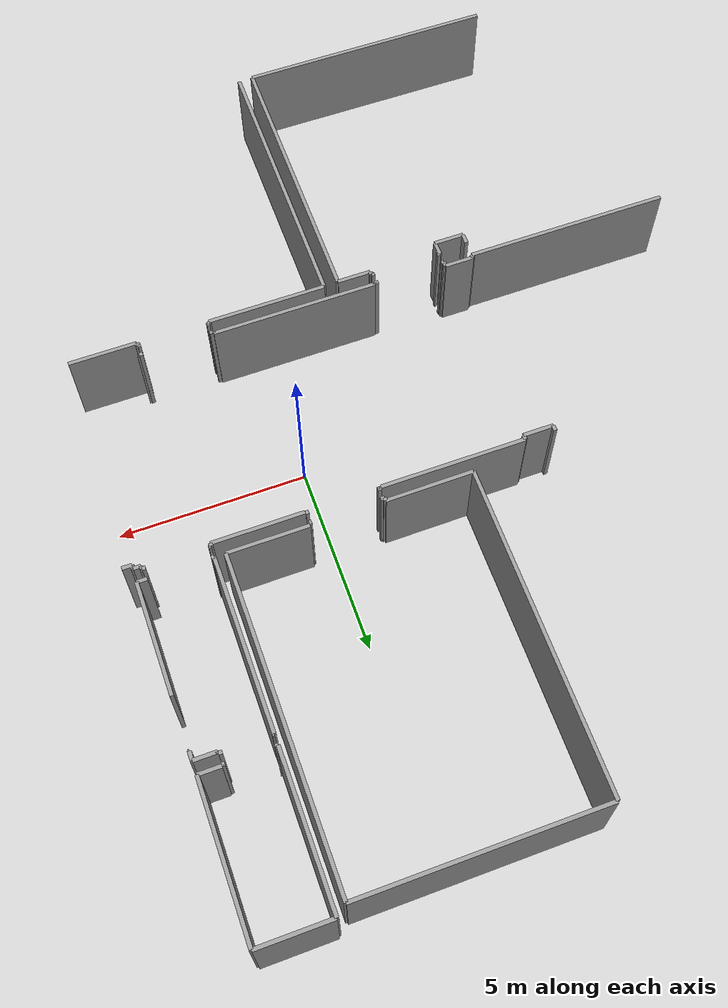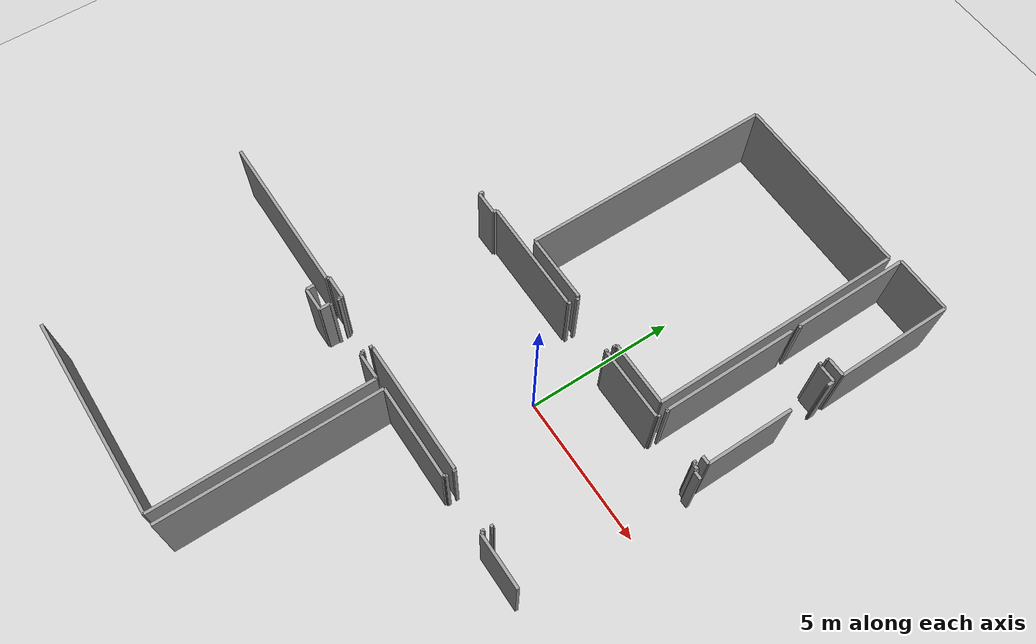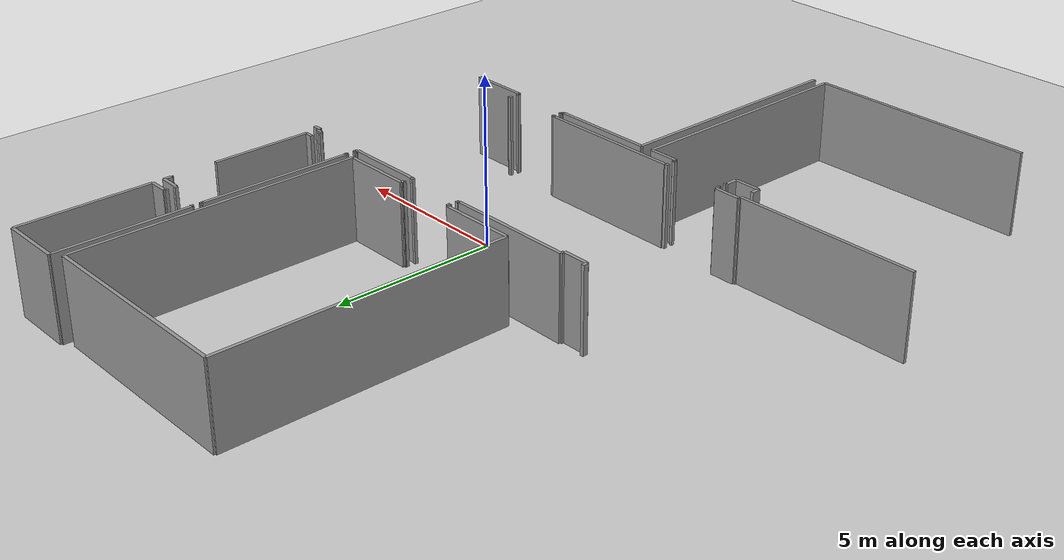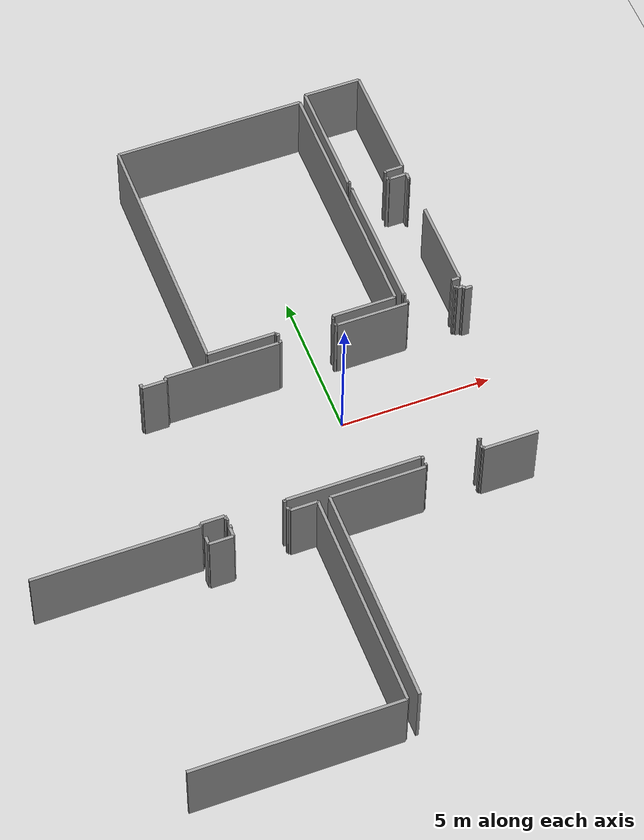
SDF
<sdf version="1.6">
 <world name="default">
  <model name="ground_plane">
   <static>1</static>
   <link name="link">
    <collision name="collision">
     <geometry><plane><normal>0 0 1</normal><size>100 100</size></plane></geometry>
     <surface><friction><ode><mu>100</mu><mu2>50</mu2></ode></friction></surface>
    </collision>
    <visual name="visual">
     <cast_shadows>0</cast_shadows>
     <geometry><plane><normal>0 0 1</normal><size>100 100</size></plane></geometry>
     <material>
      <script><uri>file://media/materials/scripts/gazebo.material</uri><name>Gazebo/Grey</name></script>
     </material>
    </visual>
   </link>
  </model>
  <model name="0510030938_A_40_1_102">
   <static>1</static>
   <link name="Wall_87">
    <collision name="Wall_87_Collision">
     <geometry><box><size>8.53299273042 0.1 2.5</size></box></geometry>
     <pose>4.26649636521 0 1.25 0 0 0</pose>
    </collision>
    <visual name="Wall_87_Visual">
     <pose>4.26649636521 0 1.25 0 0 0</pose>
     <geometry><box><size>8.53299273042 0.1 2.5</size></box></geometry>
     <material>
      <script><uri>file://media/materials/scripts/gazebo.material</uri><name>Gazebo/Grey</name></script>
      <ambient>1 1 1 1</ambient>
     </material>
    </visual>
    <pose>22.5193177774 -8.77192313558 0 0 0 1.57079632679</pose>
   </link>
   <link name="Wall_88">
    <collision name="Wall_88_Collision">
     <geometry><box><size>6.32237812008 0.1 2.5</size></box></geometry>
     <pose>3.16118906004 0 1.25 0 0 0</pose>
    </collision>
    <visual name="Wall_88_Visual">
     <pose>3.16118906004 0 1.25 0 0 0</pose>
     <geometry><box><size>6.32237812008 0.1 2.5</size></box></geometry>
     <material>
      <script><uri>file://media/materials/scripts/gazebo.material</uri><name>Gazebo/Grey</name></script>
      <ambient>1 1 1 1</ambient>
     </material>
    </visual>
    <pose>22.5193177774 -0.238930405165 0 0 0 0.0</pose>
   </link>
   <link name="Wall_89">
    <collision name="Wall_89_Collision">
     <geometry><box><size>8.53083218952 0.1 2.5</size></box></geometry>
     <pose>4.26541609476 0 1.25 0 0 0</pose>
    </collision>
    <visual name="Wall_89_Visual">
     <pose>4.26541609476 0 1.25 0 0 0</pose>
     <geometry><box><size>8.53083218952 0.1 2.5</size></box></geometry>
     <material>
      <script><uri>file://media/materials/scripts/gazebo.material</uri><name>Gazebo/Grey</name></script>
      <ambient>1 1 1 1</ambient>
     </material>
    </visual>
    <pose>28.8416958975 -0.238930405165 0 0 0 -1.57079632679</pose>
   </link>
   <link name="Wall_90">
    <collision name="Wall_90_Collision">
     <geometry><box><size>2.11504244827 0.1 2.5</size></box></geometry>
     <pose>1.05752122414 0 1.25 0 0 0</pose>
    </collision>
    <visual name="Wall_90_Visual">
     <pose>1.05752122414 0 1.25 0 0 0</pose>
     <geometry><box><size>2.11504244827 0.1 2.5</size></box></geometry>
     <material>
      <script><uri>file://media/materials/scripts/gazebo.material</uri><name>Gazebo/Grey</name></script>
      <ambient>1 1 1 1</ambient>
     </material>
    </visual>
    <pose>28.8416958975 -8.76976259468 0 0 0 3.14159265359</pose>
   </link>
   <link name="Wall_91">
    <collision name="Wall_91_Collision">
     <geometry><box><size>0.0748563875756 0.1 2.5</size></box></geometry>
     <pose>0.0374281937878 0 1.25 0 0 0</pose>
    </collision>
    <visual name="Wall_91_Visual">
     <pose>0.0374281937878 0 1.25 0 0 0</pose>
     <geometry><box><size>0.0748563875756 0.1 2.5</size></box></geometry>
     <material>
      <script><uri>file://media/materials/scripts/gazebo.material</uri><name>Gazebo/Grey</name></script>
      <ambient>1 1 1 1</ambient>
     </material>
    </visual>
    <pose>26.7266534492 -8.76976259468 0 0 0 -1.57079632679</pose>
   </link>
   <link name="Wall_92">
    <collision name="Wall_92_Collision">
     <geometry><box><size>0.0624015047532 0.1 2.5</size></box></geometry>
     <pose>0.0312007523766 0 1.25 0 0 0</pose>
    </collision>
    <visual name="Wall_92_Visual">
     <pose>0.0312007523766 0 1.25 0 0 0</pose>
     <geometry><box><size>0.0624015047532 0.1 2.5</size></box></geometry>
     <material>
      <script><uri>file://media/materials/scripts/gazebo.material</uri><name>Gazebo/Grey</name></script>
      <ambient>1 1 1 1</ambient>
     </material>
    </visual>
    <pose>26.7266534492 -8.84461898226 0 0 0 3.14159265359</pose>
   </link>
   <link name="Wall_93">
    <collision name="Wall_93_Collision">
     <geometry><box><size>0.101037059631 0.1 2.5</size></box></geometry>
     <pose>0.0505185298155 0 1.25 0 0 0</pose>
    </collision>
    <visual name="Wall_93_Visual">
     <pose>0.0505185298155 0 1.25 0 0 0</pose>
     <geometry><box><size>0.101037059631 0.1 2.5</size></box></geometry>
     <material>
      <script><uri>file://media/materials/scripts/gazebo.material</uri><name>Gazebo/Grey</name></script>
      <ambient>1 1 1 1</ambient>
     </material>
    </visual>
    <pose>24.9029027502 -8.84461898226 0 0 0 3.14159265359</pose>
   </link>
   <link name="Wall_94">
    <collision name="Wall_94_Collision">
     <geometry><box><size>0.0801941944995 0.1 2.5</size></box></geometry>
     <pose>0.0400970972498 0 1.25 0 0 0</pose>
    </collision>
    <visual name="Wall_94_Visual">
     <pose>0.0400970972498 0 1.25 0 0 0</pose>
     <geometry><box><size>0.0801941944995 0.1 2.5</size></box></geometry>
     <material>
      <script><uri>file://media/materials/scripts/gazebo.material</uri><name>Gazebo/Grey</name></script>
      <ambient>1 1 1 1</ambient>
     </material>
    </visual>
    <pose>24.8018656906 -8.84461898226 0 0 0 1.57079632679</pose>
   </link>
   <link name="Wall_95">
    <collision name="Wall_95_Collision">
     <geometry><box><size>2.28256022947 0.1 2.5</size></box></geometry>
     <pose>1.14128011473 0 1.25 0 0 0</pose>
    </collision>
    <visual name="Wall_95_Visual">
     <pose>1.14128011473 0 1.25 0 0 0</pose>
     <geometry><box><size>2.28256022947 0.1 2.5</size></box></geometry>
     <material>
      <script><uri>file://media/materials/scripts/gazebo.material</uri><name>Gazebo/Grey</name></script>
      <ambient>1 1 1 1</ambient>
     </material>
    </visual>
    <pose>24.8018656906 -8.76442478776 0 0 0 -3.13830758746</pose>
   </link>
   <link name="Wall_96">
    <collision name="Wall_96_Collision">
     <geometry><box><size>4.49417924864 0.1 2.5</size></box></geometry>
     <pose>2.24708962432 0 1.25 0 0 0</pose>
    </collision>
    <visual name="Wall_96_Visual">
     <pose>2.24708962432 0 1.25 0 0 0</pose>
     <geometry><box><size>4.49417924864 0.1 2.5</size></box></geometry>
     <material>
      <script><uri>file://media/materials/scripts/gazebo.material</uri><name>Gazebo/Grey</name></script>
      <ambient>1 1 1 1</ambient>
     </material>
    </visual>
    <pose>29.1280311118 -8.73239794622 0 0 0 1.57079632679</pose>
   </link>
   <link name="Wall_97">
    <collision name="Wall_97_Collision">
     <geometry><box><size>0.0480402623151 0.1 2.5</size></box></geometry>
     <pose>0.0240201311575 0 1.25 0 0 0</pose>
    </collision>
    <visual name="Wall_97_Visual">
     <pose>0.0240201311575 0 1.25 0 0 0</pose>
     <geometry><box><size>0.0480402623151 0.1 2.5</size></box></geometry>
     <material>
      <script><uri>file://media/materials/scripts/gazebo.material</uri><name>Gazebo/Grey</name></script>
      <ambient>1 1 1 1</ambient>
     </material>
    </visual>
    <pose>29.1280311118 -4.23821869758 0 0 0 0.0</pose>
   </link>
   <link name="Wall_98">
    <collision name="Wall_98_Collision">
     <geometry><box><size>0.090107264501 0.1 2.5</size></box></geometry>
     <pose>0.0450536322505 0 1.25 0 0 0</pose>
    </collision>
    <visual name="Wall_98_Visual">
     <pose>0.0450536322505 0 1.25 0 0 0</pose>
     <geometry><box><size>0.090107264501 0.1 2.5</size></box></geometry>
     <material>
      <script><uri>file://media/materials/scripts/gazebo.material</uri><name>Gazebo/Grey</name></script>
      <ambient>1 1 1 1</ambient>
     </material>
    </visual>
    <pose>30.3390778303 -4.23821869758 0 0 0 0.0</pose>
   </link>
   <link name="Wall_99">
    <collision name="Wall_99_Collision">
     <geometry><box><size>0.0380001016725 0.1 2.5</size></box></geometry>
     <pose>0.0190000508363 0 1.25 0 0 0</pose>
    </collision>
    <visual name="Wall_99_Visual">
     <pose>0.0190000508363 0 1.25 0 0 0</pose>
     <geometry><box><size>0.0380001016725 0.1 2.5</size></box></geometry>
     <material>
      <script><uri>file://media/materials/scripts/gazebo.material</uri><name>Gazebo/Grey</name></script>
      <ambient>1 1 1 1</ambient>
     </material>
    </visual>
    <pose>30.4291850948 -4.23821869758 0 0 0 -1.57079632679</pose>
   </link>
   <link name="Wall_100">
    <collision name="Wall_100_Collision">
     <geometry><box><size>0.595546743938 0.1 2.5</size></box></geometry>
     <pose>0.297773371969 0 1.25 0 0 0</pose>
    </collision>
    <visual name="Wall_100_Visual">
     <pose>0.297773371969 0 1.25 0 0 0</pose>
     <geometry><box><size>0.595546743938 0.1 2.5</size></box></geometry>
     <material>
      <script><uri>file://media/materials/scripts/gazebo.material</uri><name>Gazebo/Grey</name></script>
      <ambient>1 1 1 1</ambient>
     </material>
    </visual>
    <pose>30.4291850948 -4.27621879925 0 0 0 0.0</pose>
   </link>
   <link name="Wall_101">
    <collision name="Wall_101_Collision">
     <geometry><box><size>0.233719688882 0.1 2.5</size></box></geometry>
     <pose>0.116859844441 0 1.25 0 0 0</pose>
    </collision>
    <visual name="Wall_101_Visual">
     <pose>0.116859844441 0 1.25 0 0 0</pose>
     <geometry><box><size>0.233719688882 0.1 2.5</size></box></geometry>
     <material>
      <script><uri>file://media/materials/scripts/gazebo.material</uri><name>Gazebo/Grey</name></script>
      <ambient>1 1 1 1</ambient>
     </material>
    </visual>
    <pose>31.0247318387 -4.27621879925 0 0 0 -1.57079632679</pose>
   </link>
   <link name="Wall_102">
    <collision name="Wall_102_Collision">
     <geometry><box><size>0.0250368562859 0.1 2.5</size></box></geometry>
     <pose>0.0125184281429 0 1.25 0 0 0</pose>
    </collision>
    <visual name="Wall_102_Visual">
     <pose>0.0125184281429 0 1.25 0 0 0</pose>
     <geometry><box><size>0.0250368562859 0.1 2.5</size></box></geometry>
     <material>
      <script><uri>file://media/materials/scripts/gazebo.material</uri><name>Gazebo/Grey</name></script>
      <ambient>1 1 1 1</ambient>
     </material>
    </visual>
    <pose>31.0247318387 -4.50993848813 0 0 0 0.0</pose>
   </link>
   <link name="Wall_106">
    <collision name="Wall_106_Collision">
     <geometry><box><size>2.93376035789 0.1 2.5</size></box></geometry>
     <pose>1.46688017894 0 1.25 0 0 0</pose>
    </collision>
    <visual name="Wall_106_Visual">
     <pose>1.46688017894 0 1.25 0 0 0</pose>
     <geometry><box><size>2.93376035789 0.1 2.5</size></box></geometry>
     <material>
      <script><uri>file://media/materials/scripts/gazebo.material</uri><name>Gazebo/Grey</name></script>
      <ambient>1 1 1 1</ambient>
     </material>
    </visual>
    <pose>31.0308321895 -5.84909257282 0 0 0 -1.57079632679</pose>
   </link>
   <link name="Wall_107">
    <collision name="Wall_107_Collision">
     <geometry><box><size>0.267398708759 0.1 2.5</size></box></geometry>
     <pose>0.13369935438 0 1.25 0 0 0</pose>
    </collision>
    <visual name="Wall_107_Visual">
     <pose>0.13369935438 0 1.25 0 0 0</pose>
     <geometry><box><size>0.267398708759 0.1 2.5</size></box></geometry>
     <material>
      <script><uri>file://media/materials/scripts/gazebo.material</uri><name>Gazebo/Grey</name></script>
      <ambient>1 1 1 1</ambient>
     </material>
    </visual>
    <pose>31.0308321895 -8.78285293071 0 0 0 3.14159265359</pose>
   </link>
   <link name="Wall_108">
    <collision name="Wall_108_Collision">
     <geometry><box><size>0.0765085659092 0.1 2.5</size></box></geometry>
     <pose>0.0382542829546 0 1.25 0 0 0</pose>
    </collision>
    <visual name="Wall_108_Visual">
     <pose>0.0382542829546 0 1.25 0 0 0</pose>
     <geometry><box><size>0.0765085659092 0.1 2.5</size></box></geometry>
     <material>
      <script><uri>file://media/materials/scripts/gazebo.material</uri><name>Gazebo/Grey</name></script>
      <ambient>1 1 1 1</ambient>
     </material>
    </visual>
    <pose>29.1999644146 -8.78285293071 0 0 0 3.14159265359</pose>
   </link>
   <link name="Wall_109">
    <collision name="Wall_109_Collision">
     <geometry><box><size>0.0506620024537 0.1 2.5</size></box></geometry>
     <pose>0.0253310012268 0 1.25 0 0 0</pose>
    </collision>
    <visual name="Wall_109_Visual">
     <pose>0.0253310012268 0 1.25 0 0 0</pose>
     <geometry><box><size>0.0506620024537 0.1 2.5</size></box></geometry>
     <material>
      <script><uri>file://media/materials/scripts/gazebo.material</uri><name>Gazebo/Grey</name></script>
      <ambient>1 1 1 1</ambient>
     </material>
    </visual>
    <pose>29.1234558487 -8.78285293071 0 0 0 1.48036355746</pose>
   </link>
   <link name="Wall_110">
    <collision name="Wall_110_Collision">
     <geometry><box><size>3.94552895125 0.1 2.5</size></box></geometry>
     <pose>1.97276447562 0 1.25 0 0 0</pose>
    </collision>
    <visual name="Wall_110_Visual">
     <pose>1.97276447562 0 1.25 0 0 0</pose>
     <geometry><box><size>3.94552895125 0.1 2.5</size></box></geometry>
     <material>
      <script><uri>file://media/materials/scripts/gazebo.material</uri><name>Gazebo/Grey</name></script>
      <ambient>1 1 1 1</ambient>
     </material>
    </visual>
    <pose>29.1233287581 -3.95989019369 0 0 0 1.57079632679</pose>
   </link>
   <link name="Wall_111">
    <collision name="Wall_111_Collision">
     <geometry><box><size>1.89670072696 0.1 2.5</size></box></geometry>
     <pose>0.948350363479 0 1.25 0 0 0</pose>
    </collision>
    <visual name="Wall_111_Visual">
     <pose>0.948350363479 0 1.25 0 0 0</pose>
     <geometry><box><size>1.89670072696 0.1 2.5</size></box></geometry>
     <material>
      <script><uri>file://media/materials/scripts/gazebo.material</uri><name>Gazebo/Grey</name></script>
      <ambient>1 1 1 1</ambient>
     </material>
    </visual>
    <pose>29.1233287581 -0.0143612424381 0 0 0 0.0</pose>
   </link>
   <link name="Wall_112">
    <collision name="Wall_112_Collision">
     <geometry><box><size>3.92519444868 0.1 2.5</size></box></geometry>
     <pose>1.96259722434 0 1.25 0 0 0</pose>
    </collision>
    <visual name="Wall_112_Visual">
     <pose>1.96259722434 0 1.25 0 0 0</pose>
     <geometry><box><size>3.92519444868 0.1 2.5</size></box></geometry>
     <material>
      <script><uri>file://media/materials/scripts/gazebo.material</uri><name>Gazebo/Grey</name></script>
      <ambient>1 1 1 1</ambient>
     </material>
    </visual>
    <pose>31.020029485 -0.0143612424381 0 0 0 -1.57079632679</pose>
   </link>
   <link name="Wall_113">
    <collision name="Wall_113_Collision">
     <geometry><box><size>0.581566773423 0.1 2.5</size></box></geometry>
     <pose>0.290783386711 0 1.25 0 0 0</pose>
    </collision>
    <visual name="Wall_113_Visual">
     <pose>0.290783386711 0 1.25 0 0 0</pose>
     <geometry><box><size>0.581566773423 0.1 2.5</size></box></geometry>
     <material>
      <script><uri>file://media/materials/scripts/gazebo.material</uri><name>Gazebo/Grey</name></script>
      <ambient>1 1 1 1</ambient>
     </material>
    </visual>
    <pose>31.020029485 -3.93955569112 0 0 0 3.14159265359</pose>
   </link>
   <link name="Wall_114">
    <collision name="Wall_114_Collision">
     <geometry><box><size>0.0287224848762 0.1 2.5</size></box></geometry>
     <pose>0.0143612424381 0 1.25 0 0 0</pose>
    </collision>
    <visual name="Wall_114_Visual">
     <pose>0.0143612424381 0 1.25 0 0 0</pose>
     <geometry><box><size>0.0287224848762 0.1 2.5</size></box></geometry>
     <material>
      <script><uri>file://media/materials/scripts/gazebo.material</uri><name>Gazebo/Grey</name></script>
      <ambient>1 1 1 1</ambient>
     </material>
    </visual>
    <pose>30.4384627116 -3.93955569112 0 0 0 -1.57079632679</pose>
   </link>
   <link name="Wall_115">
    <collision name="Wall_115_Collision">
     <geometry><box><size>0.0743480250114 0.1 2.5</size></box></geometry>
     <pose>0.0371740125057 0 1.25 0 0 0</pose>
    </collision>
    <visual name="Wall_115_Visual">
     <pose>0.0371740125057 0 1.25 0 0 0</pose>
     <geometry><box><size>0.0743480250114 0.1 2.5</size></box></geometry>
     <material>
      <script><uri>file://media/materials/scripts/gazebo.material</uri><name>Gazebo/Grey</name></script>
      <ambient>1 1 1 1</ambient>
     </material>
    </visual>
    <pose>30.4384627116 -3.968278176 0 0 0 3.14159265359</pose>
   </link>
   <link name="Wall_116">
    <collision name="Wall_116_Collision">
     <geometry><box><size>0.0758300983176 0.1 2.5</size></box></geometry>
     <pose>0.0379150491588 0 1.25 0 0 0</pose>
    </collision>
    <visual name="Wall_116_Visual">
     <pose>0.0379150491588 0 1.25 0 0 0</pose>
     <geometry><box><size>0.0758300983176 0.1 2.5</size></box></geometry>
     <material>
      <script><uri>file://media/materials/scripts/gazebo.material</uri><name>Gazebo/Grey</name></script>
      <ambient>1 1 1 1</ambient>
     </material>
    </visual>
    <pose>29.1986935082 -3.968278176 0 0 0 3.03075035006</pose>
   </link>
   <link name="Wall_138">
    <collision name="Wall_138_Collision">
     <geometry><box><size>0.270067612221 0.1 2.5</size></box></geometry>
     <pose>0.135033806111 0 1.25 0 0 0</pose>
    </collision>
    <visual name="Wall_138_Visual">
     <pose>0.135033806111 0 1.25 0 0 0</pose>
     <geometry><box><size>0.270067612221 0.1 2.5</size></box></geometry>
     <material>
      <script><uri>file://media/materials/scripts/gazebo.material</uri><name>Gazebo/Grey</name></script>
      <ambient>1 1 1 1</ambient>
     </material>
    </visual>
    <pose>20.1955924966 -15.0931574399 0 0 0 -1.57079632679</pose>
   </link>
   <link name="Wall_139">
    <collision name="Wall_139_Collision">
     <geometry><box><size>0.789359971532 0.1 2.5</size></box></geometry>
     <pose>0.394679985766 0 1.25 0 0 0</pose>
    </collision>
    <visual name="Wall_139_Visual">
     <pose>0.394679985766 0 1.25 0 0 0</pose>
     <geometry><box><size>0.789359971532 0.1 2.5</size></box></geometry>
     <material>
      <script><uri>file://media/materials/scripts/gazebo.material</uri><name>Gazebo/Grey</name></script>
      <ambient>1 1 1 1</ambient>
     </material>
    </visual>
    <pose>20.1955924966 -15.3632250521 0 0 0 0.0</pose>
   </link>
   <link name="Wall_140">
    <collision name="Wall_140_Collision">
     <geometry><box><size>0.361445783133 0.1 2.5</size></box></geometry>
     <pose>0.180722891566 0 1.25 0 0 0</pose>
    </collision>
    <visual name="Wall_140_Visual">
     <pose>0.180722891566 0 1.25 0 0 0</pose>
     <geometry><box><size>0.361445783133 0.1 2.5</size></box></geometry>
     <material>
      <script><uri>file://media/materials/scripts/gazebo.material</uri><name>Gazebo/Grey</name></script>
      <ambient>1 1 1 1</ambient>
     </material>
    </visual>
    <pose>20.9849524681 -15.3632250521 0 0 0 1.57079632679</pose>
   </link>
   <link name="Wall_141">
    <collision name="Wall_141_Collision">
     <geometry><box><size>0.0789232880891 0.1 2.5</size></box></geometry>
     <pose>0.0394616440445 0 1.25 0 0 0</pose>
    </collision>
    <visual name="Wall_141_Visual">
     <pose>0.0394616440445 0 1.25 0 0 0</pose>
     <geometry><box><size>0.0789232880891 0.1 2.5</size></box></geometry>
     <material>
      <script><uri>file://media/materials/scripts/gazebo.material</uri><name>Gazebo/Grey</name></script>
      <ambient>1 1 1 1</ambient>
     </material>
    </visual>
    <pose>20.9849524681 -15.001779269 0 0 0 0.0</pose>
   </link>
   <link name="Wall_142">
    <collision name="Wall_142_Collision">
     <geometry><box><size>0.0915052615525 0.1 2.5</size></box></geometry>
     <pose>0.0457526307763 0 1.25 0 0 0</pose>
    </collision>
    <visual name="Wall_142_Visual">
     <pose>0.0457526307763 0 1.25 0 0 0</pose>
     <geometry><box><size>0.0915052615525 0.1 2.5</size></box></geometry>
     <material>
      <script><uri>file://media/materials/scripts/gazebo.material</uri><name>Gazebo/Grey</name></script>
      <ambient>1 1 1 1</ambient>
     </material>
    </visual>
    <pose>22.8170911494 -15.001779269 0 0 0 0.0</pose>
   </link>
   <link name="Wall_143">
    <collision name="Wall_143_Collision">
     <geometry><box><size>0.0954450714249 0.1 2.5</size></box></geometry>
     <pose>0.0477225357125 0 1.25 0 0 0</pose>
    </collision>
    <visual name="Wall_143_Visual">
     <pose>0.0477225357125 0 1.25 0 0 0</pose>
     <geometry><box><size>0.0954450714249 0.1 2.5</size></box></geometry>
     <material>
      <script><uri>file://media/materials/scripts/gazebo.material</uri><name>Gazebo/Grey</name></script>
      <ambient>1 1 1 1</ambient>
     </material>
    </visual>
    <pose>22.908596411 -15.001779269 0 0 0 -1.57079632679</pose>
   </link>
   <link name="Wall_144">
    <collision name="Wall_144_Collision">
     <geometry><box><size>0.89738701642 0.1 2.5</size></box></geometry>
     <pose>0.44869350821 0 1.25 0 0 0</pose>
    </collision>
    <visual name="Wall_144_Visual">
     <pose>0.44869350821 0 1.25 0 0 0</pose>
     <geometry><box><size>0.89738701642 0.1 2.5</size></box></geometry>
     <material>
      <script><uri>file://media/materials/scripts/gazebo.material</uri><name>Gazebo/Grey</name></script>
      <ambient>1 1 1 1</ambient>
     </material>
    </visual>
    <pose>22.908596411 -15.0972243404 0 0 0 0.0</pose>
   </link>
   <link name="Wall_145">
    <collision name="Wall_145_Collision">
     <geometry><box><size>7.29576533984 0.1 2.5</size></box></geometry>
     <pose>3.64788266992 0 1.25 0 0 0</pose>
    </collision>
    <visual name="Wall_145_Visual">
     <pose>3.64788266992 0 1.25 0 0 0</pose>
     <geometry><box><size>7.29576533984 0.1 2.5</size></box></geometry>
     <material>
      <script><uri>file://media/materials/scripts/gazebo.material</uri><name>Gazebo/Grey</name></script>
      <ambient>1 1 1 1</ambient>
     </material>
    </visual>
    <pose>23.8059834274 -15.0972243404 0 0 0 -1.57079632679</pose>
   </link>
   <link name="Wall_146">
    <collision name="Wall_146_Collision">
     <geometry><box><size>6.82604364156 0.1 2.5</size></box></geometry>
     <pose>3.41302182078 0 1.25 0 0 0</pose>
    </collision>
    <visual name="Wall_146_Visual">
     <pose>3.41302182078 0 1.25 0 0 0</pose>
     <geometry><box><size>6.82604364156 0.1 2.5</size></box></geometry>
     <material>
      <script><uri>file://media/materials/scripts/gazebo.material</uri><name>Gazebo/Grey</name></script>
      <ambient>1 1 1 1</ambient>
     </material>
    </visual>
    <pose>23.8059834274 -22.3929896802 0 0 0 3.14034521428</pose>
   </link>
   <link name="Wall_147">
    <collision name="Wall_147_Collision">
     <geometry><box><size>7.29271516446 0.1 2.5</size></box></geometry>
     <pose>3.64635758223 0 1.25 0 0 0</pose>
    </collision>
    <visual name="Wall_147_Visual">
     <pose>3.64635758223 0 1.25 0 0 0</pose>
     <geometry><box><size>7.29271516446 0.1 2.5</size></box></geometry>
     <material>
      <script><uri>file://media/materials/scripts/gazebo.material</uri><name>Gazebo/Grey</name></script>
      <ambient>1 1 1 1</ambient>
     </material>
    </visual>
    <pose>24.1924660668 -22.3697320929 0 0 0 1.57079632679</pose>
   </link>
   <link name="Wall_148">
    <collision name="Wall_148_Collision">
     <geometry><box><size>3.14129937471 0.1 2.5</size></box></geometry>
     <pose>1.57064968736 0 1.25 0 0 0</pose>
    </collision>
    <visual name="Wall_148_Visual">
     <pose>1.57064968736 0 1.25 0 0 0</pose>
     <geometry><box><size>3.14129937471 0.1 2.5</size></box></geometry>
     <material>
      <script><uri>file://media/materials/scripts/gazebo.material</uri><name>Gazebo/Grey</name></script>
      <ambient>1 1 1 1</ambient>
     </material>
    </visual>
    <pose>24.1924660668 -15.0770169285 0 0 0 0.0</pose>
   </link>
   <link name="Wall_149">
    <collision name="Wall_149_Collision">
     <geometry><box><size>0.0757460220629 0.1 2.5</size></box></geometry>
     <pose>0.0378730110315 0 1.25 0 0 0</pose>
    </collision>
    <visual name="Wall_149_Visual">
     <pose>0.0378730110315 0 1.25 0 0 0</pose>
     <geometry><box><size>0.0757460220629 0.1 2.5</size></box></geometry>
     <material>
      <script><uri>file://media/materials/scripts/gazebo.material</uri><name>Gazebo/Grey</name></script>
      <ambient>1 1 1 1</ambient>
     </material>
    </visual>
    <pose>27.3337654415 -15.0770169285 0 0 0 1.57079632679</pose>
   </link>
   <link name="Wall_150">
    <collision name="Wall_150_Collision">
     <geometry><box><size>0.0757460220629 0.1 2.5</size></box></geometry>
     <pose>0.0378730110315 0 1.25 0 0 0</pose>
    </collision>
    <visual name="Wall_150_Visual">
     <pose>0.0378730110315 0 1.25 0 0 0</pose>
     <geometry><box><size>0.0757460220629 0.1 2.5</size></box></geometry>
     <material>
      <script><uri>file://media/materials/scripts/gazebo.material</uri><name>Gazebo/Grey</name></script>
      <ambient>1 1 1 1</ambient>
     </material>
    </visual>
    <pose>27.3337654415 -15.0012709064 0 0 0 0.0</pose>
   </link>
   <link name="Wall_151">
    <collision name="Wall_151_Collision">
     <geometry><box><size>0.0808296477047 0.1 2.5</size></box></geometry>
     <pose>0.0404148238524 0 1.25 0 0 0</pose>
    </collision>
    <visual name="Wall_151_Visual">
     <pose>0.0404148238524 0 1.25 0 0 0</pose>
     <geometry><box><size>0.0808296477047 0.1 2.5</size></box></geometry>
     <material>
      <script><uri>file://media/materials/scripts/gazebo.material</uri><name>Gazebo/Grey</name></script>
      <ambient>1 1 1 1</ambient>
     </material>
    </visual>
    <pose>29.1652686696 -15.0012709064 0 0 0 0.0</pose>
   </link>
   <link name="Wall_152">
    <collision name="Wall_152_Collision">
     <geometry><box><size>0.0874383610391 0.1 2.5</size></box></geometry>
     <pose>0.0437191805195 0 1.25 0 0 0</pose>
    </collision>
    <visual name="Wall_152_Visual">
     <pose>0.0437191805195 0 1.25 0 0 0</pose>
     <geometry><box><size>0.0874383610391 0.1 2.5</size></box></geometry>
     <material>
      <script><uri>file://media/materials/scripts/gazebo.material</uri><name>Gazebo/Grey</name></script>
      <ambient>1 1 1 1</ambient>
     </material>
    </visual>
    <pose>29.2460983173 -15.0012709064 0 0 0 -1.57079632679</pose>
   </link>
   <link name="Wall_153">
    <collision name="Wall_153_Collision">
     <geometry><box><size>1.79693457374 0.1 2.5</size></box></geometry>
     <pose>0.898467286869 0 1.25 0 0 0</pose>
    </collision>
    <visual name="Wall_153_Visual">
     <pose>0.898467286869 0 1.25 0 0 0</pose>
     <geometry><box><size>1.79693457374 0.1 2.5</size></box></geometry>
     <material>
      <script><uri>file://media/materials/scripts/gazebo.material</uri><name>Gazebo/Grey</name></script>
      <ambient>1 1 1 1</ambient>
     </material>
    </visual>
    <pose>29.2460983173 -15.0887092674 0 0 0 0.0</pose>
   </link>
   <link name="Wall_181">
    <collision name="Wall_181_Collision">
     <geometry><box><size>0.145518783997 0.1 2.5</size></box></geometry>
     <pose>0.0727593919984 0 1.25 0 0 0</pose>
    </collision>
    <visual name="Wall_181_Visual">
     <pose>0.0727593919984 0 1.25 0 0 0</pose>
     <geometry><box><size>0.145518783997 0.1 2.5</size></box></geometry>
     <material>
      <script><uri>file://media/materials/scripts/gazebo.material</uri><name>Gazebo/Grey</name></script>
      <ambient>1 1 1 1</ambient>
     </material>
    </visual>
    <pose>20.1971175843 -9.12371002999 0 0 0 -1.57079632679</pose>
   </link>
   <link name="Wall_182">
    <collision name="Wall_182_Collision">
     <geometry><box><size>0.792155965635 0.1 2.5</size></box></geometry>
     <pose>0.396077982817 0 1.25 0 0 0</pose>
    </collision>
    <visual name="Wall_182_Visual">
     <pose>0.396077982817 0 1.25 0 0 0</pose>
     <geometry><box><size>0.792155965635 0.1 2.5</size></box></geometry>
     <material>
      <script><uri>file://media/materials/scripts/gazebo.material</uri><name>Gazebo/Grey</name></script>
      <ambient>1 1 1 1</ambient>
     </material>
    </visual>
    <pose>20.1971175843 -9.26922881399 0 0 0 0.0</pose>
   </link>
   <link name="Wall_183">
    <collision name="Wall_183_Collision">
     <geometry><box><size>0.118575568095 0.1 2.5</size></box></geometry>
     <pose>0.0592877840476 0 1.25 0 0 0</pose>
    </collision>
    <visual name="Wall_183_Visual">
     <pose>0.0592877840476 0 1.25 0 0 0</pose>
     <geometry><box><size>0.118575568095 0.1 2.5</size></box></geometry>
     <material>
      <script><uri>file://media/materials/scripts/gazebo.material</uri><name>Gazebo/Grey</name></script>
      <ambient>1 1 1 1</ambient>
     </material>
    </visual>
    <pose>20.9892735499 -9.26922881399 0 0 0 1.57079632679</pose>
   </link>
   <link name="Wall_184">
    <collision name="Wall_184_Collision">
     <geometry><box><size>3.79899344212 0.1 2.5</size></box></geometry>
     <pose>1.89949672106 0 1.25 0 0 0</pose>
    </collision>
    <visual name="Wall_184_Visual">
     <pose>1.89949672106 0 1.25 0 0 0</pose>
     <geometry><box><size>3.79899344212 0.1 2.5</size></box></geometry>
     <material>
      <script><uri>file://media/materials/scripts/gazebo.material</uri><name>Gazebo/Grey</name></script>
      <ambient>1 1 1 1</ambient>
     </material>
    </visual>
    <pose>20.9892735499 -9.15065324589 0 0 0 0.0</pose>
   </link>
   <link name="Wall_185">
    <collision name="Wall_185_Collision">
     <geometry><box><size>0.0318997509023 0.1 2.5</size></box></geometry>
     <pose>0.0159498754512 0 1.25 0 0 0</pose>
    </collision>
    <visual name="Wall_185_Visual">
     <pose>0.0159498754512 0 1.25 0 0 0</pose>
     <geometry><box><size>0.0318997509023 0.1 2.5</size></box></geometry>
     <material>
      <script><uri>file://media/materials/scripts/gazebo.material</uri><name>Gazebo/Grey</name></script>
      <ambient>1 1 1 1</ambient>
     </material>
    </visual>
    <pose>24.788266992 -9.15065324589 0 0 0 1.57079632679</pose>
   </link>
   <link name="Wall_186">
    <collision name="Wall_186_Collision">
     <geometry><box><size>0.0921407147578 0.1 2.5</size></box></geometry>
     <pose>0.0460703573789 0 1.25 0 0 0</pose>
    </collision>
    <visual name="Wall_186_Visual">
     <pose>0.0460703573789 0 1.25 0 0 0</pose>
     <geometry><box><size>0.0921407147578 0.1 2.5</size></box></geometry>
     <material>
      <script><uri>file://media/materials/scripts/gazebo.material</uri><name>Gazebo/Grey</name></script>
      <ambient>1 1 1 1</ambient>
     </material>
    </visual>
    <pose>24.788266992 -9.11875349499 0 0 0 0.0</pose>
   </link>
   <link name="Wall_187">
    <collision name="Wall_187_Collision">
     <geometry><box><size>0.0828630979615 0.1 2.5</size></box></geometry>
     <pose>0.0414315489807 0 1.25 0 0 0</pose>
    </collision>
    <visual name="Wall_187_Visual">
     <pose>0.0414315489807 0 1.25 0 0 0</pose>
     <geometry><box><size>0.0828630979615 0.1 2.5</size></box></geometry>
     <material>
      <script><uri>file://media/materials/scripts/gazebo.material</uri><name>Gazebo/Grey</name></script>
      <ambient>1 1 1 1</ambient>
     </material>
    </visual>
    <pose>26.6439174419 -9.11875349499 0 0 0 0.0</pose>
   </link>
   <link name="Wall_188">
    <collision name="Wall_188_Collision">
     <geometry><box><size>0.019699049362 0.1 2.5</size></box></geometry>
     <pose>0.00984952468101 0 1.25 0 0 0</pose>
    </collision>
    <visual name="Wall_188_Visual">
     <pose>0.00984952468101 0 1.25 0 0 0</pose>
     <geometry><box><size>0.019699049362 0.1 2.5</size></box></geometry>
     <material>
      <script><uri>file://media/materials/scripts/gazebo.material</uri><name>Gazebo/Grey</name></script>
      <ambient>1 1 1 1</ambient>
     </material>
    </visual>
    <pose>26.7267805399 -9.11875349499 0 0 0 -1.57079632679</pose>
   </link>
   <link name="Wall_189">
    <collision name="Wall_189_Collision">
     <geometry><box><size>2.38625387626 0.1 2.5</size></box></geometry>
     <pose>1.19312693813 0 1.25 0 0 0</pose>
    </collision>
    <visual name="Wall_189_Visual">
     <pose>1.19312693813 0 1.25 0 0 0</pose>
     <geometry><box><size>2.38625387626 0.1 2.5</size></box></geometry>
     <material>
      <script><uri>file://media/materials/scripts/gazebo.material</uri><name>Gazebo/Grey</name></script>
      <ambient>1 1 1 1</ambient>
     </material>
    </visual>
    <pose>26.7267805399 -9.13845254435 0 0 0 0.0</pose>
   </link>
   <link name="Wall_190">
    <collision name="Wall_190_Collision">
     <geometry><box><size>0.0719333028316 0.1 2.5</size></box></geometry>
     <pose>0.0359666514158 0 1.25 0 0 0</pose>
    </collision>
    <visual name="Wall_190_Visual">
     <pose>0.0359666514158 0 1.25 0 0 0</pose>
     <geometry><box><size>0.0719333028316 0.1 2.5</size></box></geometry>
     <material>
      <script><uri>file://media/materials/scripts/gazebo.material</uri><name>Gazebo/Grey</name></script>
      <ambient>1 1 1 1</ambient>
     </material>
    </visual>
    <pose>29.1130344161 -9.13845254435 0 0 0 1.57079632679</pose>
   </link>
   <link name="Wall_191">
    <collision name="Wall_191_Collision">
     <geometry><box><size>0.0651974988562 0.1 2.5</size></box></geometry>
     <pose>0.0325987494281 0 1.25 0 0 0</pose>
    </collision>
    <visual name="Wall_191_Visual">
     <pose>0.0325987494281 0 1.25 0 0 0</pose>
     <geometry><box><size>0.0651974988562 0.1 2.5</size></box></geometry>
     <material>
      <script><uri>file://media/materials/scripts/gazebo.material</uri><name>Gazebo/Grey</name></script>
      <ambient>1 1 1 1</ambient>
     </material>
    </visual>
    <pose>29.1130344161 -9.06651924152 0 0 0 0.0</pose>
   </link>
   <link name="Wall_192">
    <collision name="Wall_192_Collision">
     <geometry><box><size>0.089853083219 0.1 2.5</size></box></geometry>
     <pose>0.0449265416095 0 1.25 0 0 0</pose>
    </collision>
    <visual name="Wall_192_Visual">
     <pose>0.0449265416095 0 1.25 0 0 0</pose>
     <geometry><box><size>0.089853083219 0.1 2.5</size></box></geometry>
     <material>
      <script><uri>file://media/materials/scripts/gazebo.material</uri><name>Gazebo/Grey</name></script>
      <ambient>1 1 1 1</ambient>
     </material>
    </visual>
    <pose>30.7297544609 -9.06651924152 0 0 0 0.0</pose>
   </link>
   <link name="Wall_193">
    <collision name="Wall_193_Collision">
     <geometry><box><size>0.0733312998831 0.1 2.5</size></box></geometry>
     <pose>0.0366656499415 0 1.25 0 0 0</pose>
    </collision>
    <visual name="Wall_193_Visual">
     <pose>0.0366656499415 0 1.25 0 0 0</pose>
     <geometry><box><size>0.0733312998831 0.1 2.5</size></box></geometry>
     <material>
      <script><uri>file://media/materials/scripts/gazebo.material</uri><name>Gazebo/Grey</name></script>
      <ambient>1 1 1 1</ambient>
     </material>
    </visual>
    <pose>30.8196075441 -9.06651924152 0 0 0 -1.57079632679</pose>
   </link>
   <link name="Wall_194">
    <collision name="Wall_194_Collision">
     <geometry><box><size>0.193940318235 0.1 2.5</size></box></geometry>
     <pose>0.0969701591175 0 1.25 0 0 0</pose>
    </collision>
    <visual name="Wall_194_Visual">
     <pose>0.0969701591175 0 1.25 0 0 0</pose>
     <geometry><box><size>0.193940318235 0.1 2.5</size></box></geometry>
     <material>
      <script><uri>file://media/materials/scripts/gazebo.material</uri><name>Gazebo/Grey</name></script>
      <ambient>1 1 1 1</ambient>
     </material>
    </visual>
    <pose>30.8196075441 -9.13985054141 0 0 0 0.0</pose>
   </link>
   <link name="Wall_195">
    <collision name="Wall_195_Collision">
     <geometry><box><size>0.0970972497585 0.1 2.5</size></box></geometry>
     <pose>0.0485486248793 0 1.25 0 0 0</pose>
    </collision>
    <visual name="Wall_195_Visual">
     <pose>0.0485486248793 0 1.25 0 0 0</pose>
     <geometry><box><size>0.0970972497585 0.1 2.5</size></box></geometry>
     <material>
      <script><uri>file://media/materials/scripts/gazebo.material</uri><name>Gazebo/Grey</name></script>
      <ambient>1 1 1 1</ambient>
     </material>
    </visual>
    <pose>31.0135478623 -9.13985054141 0 0 0 -1.57079632679</pose>
   </link>
   <link name="Wall_196">
    <collision name="Wall_196_Collision">
     <geometry><box><size>0.255070916578 0.1 2.5</size></box></geometry>
     <pose>0.127535458289 0 1.25 0 0 0</pose>
    </collision>
    <visual name="Wall_196_Visual">
     <pose>0.127535458289 0 1.25 0 0 0</pose>
     <geometry><box><size>0.255070916578 0.1 2.5</size></box></geometry>
     <material>
      <script><uri>file://media/materials/scripts/gazebo.material</uri><name>Gazebo/Grey</name></script>
      <ambient>1 1 1 1</ambient>
     </material>
    </visual>
    <pose>31.0135478623 -9.23694779116 0 0 0 0.0</pose>
   </link>
   <link name="Wall_202">
    <collision name="Wall_202_Collision">
     <geometry><box><size>0.0322810228255 0.1 2.5</size></box></geometry>
     <pose>0.0161405114127 0 1.25 0 0 0</pose>
    </collision>
    <visual name="Wall_202_Visual">
     <pose>0.0161405114127 0 1.25 0 0 0</pose>
     <geometry><box><size>0.0322810228255 0.1 2.5</size></box></geometry>
     <material>
      <script><uri>file://media/materials/scripts/gazebo.material</uri><name>Gazebo/Grey</name></script>
      <ambient>1 1 1 1</ambient>
     </material>
    </visual>
    <pose>29.2825733313 -14.6984139088 0 0 0 -1.57079632679</pose>
   </link>
   <link name="Wall_203">
    <collision name="Wall_203_Collision">
     <geometry><box><size>0.0950637995018 0.1 2.5</size></box></geometry>
     <pose>0.0475318997509 0 1.25 0 0 0</pose>
    </collision>
    <visual name="Wall_203_Visual">
     <pose>0.0475318997509 0 1.25 0 0 0</pose>
     <geometry><box><size>0.0950637995018 0.1 2.5</size></box></geometry>
     <material>
      <script><uri>file://media/materials/scripts/gazebo.material</uri><name>Gazebo/Grey</name></script>
      <ambient>1 1 1 1</ambient>
     </material>
    </visual>
    <pose>29.2825733313 -14.7306949316 0 0 0 3.14159265359</pose>
   </link>
   <link name="Wall_204">
    <collision name="Wall_204_Collision">
     <geometry><box><size>0.0903614457831 0.1 2.5</size></box></geometry>
     <pose>0.0451807228916 0 1.25 0 0 0</pose>
    </collision>
    <visual name="Wall_204_Visual">
     <pose>0.0451807228916 0 1.25 0 0 0</pose>
     <geometry><box><size>0.0903614457831 0.1 2.5</size></box></geometry>
     <material>
      <script><uri>file://media/materials/scripts/gazebo.material</uri><name>Gazebo/Grey</name></script>
      <ambient>1 1 1 1</ambient>
     </material>
    </visual>
    <pose>27.4083676478 -14.7306949316 0 0 0 3.14159265359</pose>
   </link>
   <link name="Wall_205">
    <collision name="Wall_205_Collision">
     <geometry><box><size>0.030883025774 0.1 2.5</size></box></geometry>
     <pose>0.015441512887 0 1.25 0 0 0</pose>
    </collision>
    <visual name="Wall_205_Visual">
     <pose>0.015441512887 0 1.25 0 0 0</pose>
     <geometry><box><size>0.030883025774 0.1 2.5</size></box></geometry>
     <material>
      <script><uri>file://media/materials/scripts/gazebo.material</uri><name>Gazebo/Grey</name></script>
      <ambient>1 1 1 1</ambient>
     </material>
    </visual>
    <pose>27.318006202 -14.7306949316 0 0 0 1.57079632679</pose>
   </link>
   <link name="Wall_206">
    <collision name="Wall_206_Collision">
     <geometry><box><size>4.39924253978 0.1 2.5</size></box></geometry>
     <pose>2.19962126989 0 1.25 0 0 0</pose>
    </collision>
    <visual name="Wall_206_Visual">
     <pose>2.19962126989 0 1.25 0 0 0</pose>
     <geometry><box><size>4.39924253978 0.1 2.5</size></box></geometry>
     <material>
      <script><uri>file://media/materials/scripts/gazebo.material</uri><name>Gazebo/Grey</name></script>
      <ambient>1 1 1 1</ambient>
     </material>
    </visual>
    <pose>27.318006202 -14.6998119059 0 0 0 3.14159265359</pose>
   </link>
   <link name="Wall_207">
    <collision name="Wall_207_Collision">
     <geometry><box><size>0.0263077626964 0.1 2.5</size></box></geometry>
     <pose>0.0131538813482 0 1.25 0 0 0</pose>
    </collision>
    <visual name="Wall_207_Visual">
     <pose>0.0131538813482 0 1.25 0 0 0</pose>
     <geometry><box><size>0.0263077626964 0.1 2.5</size></box></geometry>
     <material>
      <script><uri>file://media/materials/scripts/gazebo.material</uri><name>Gazebo/Grey</name></script>
      <ambient>1 1 1 1</ambient>
     </material>
    </visual>
    <pose>22.9187636622 -14.6998119059 0 0 0 -1.57079632679</pose>
   </link>
   <link name="Wall_208">
    <collision name="Wall_208_Collision">
     <geometry><box><size>0.101545422195 0.1 2.5</size></box></geometry>
     <pose>0.0507727110976 0 1.25 0 0 0</pose>
    </collision>
    <visual name="Wall_208_Visual">
     <pose>0.0507727110976 0 1.25 0 0 0</pose>
     <geometry><box><size>0.101545422195 0.1 2.5</size></box></geometry>
     <material>
      <script><uri>file://media/materials/scripts/gazebo.material</uri><name>Gazebo/Grey</name></script>
      <ambient>1 1 1 1</ambient>
     </material>
    </visual>
    <pose>22.9187636622 -14.7261196685 0 0 0 3.14159265359</pose>
   </link>
   <link name="Wall_209">
    <collision name="Wall_209_Collision">
     <geometry><box><size>0.0671038584719 0.1 2.5</size></box></geometry>
     <pose>0.0335519292359 0 1.25 0 0 0</pose>
    </collision>
    <visual name="Wall_209_Visual">
     <pose>0.0335519292359 0 1.25 0 0 0</pose>
     <geometry><box><size>0.0671038584719 0.1 2.5</size></box></geometry>
     <material>
      <script><uri>file://media/materials/scripts/gazebo.material</uri><name>Gazebo/Grey</name></script>
      <ambient>1 1 1 1</ambient>
     </material>
    </visual>
    <pose>21.0518021453 -14.7261196685 0 0 0 3.14159265359</pose>
   </link>
   <link name="Wall_210">
    <collision name="Wall_210_Collision">
     <geometry><box><size>0.129886635148 0.1 2.5</size></box></geometry>
     <pose>0.0649433175741 0 1.25 0 0 0</pose>
    </collision>
    <visual name="Wall_210_Visual">
     <pose>0.0649433175741 0 1.25 0 0 0</pose>
     <geometry><box><size>0.129886635148 0.1 2.5</size></box></geometry>
     <material>
      <script><uri>file://media/materials/scripts/gazebo.material</uri><name>Gazebo/Grey</name></script>
      <ambient>1 1 1 1</ambient>
     </material>
    </visual>
    <pose>20.9846982868 -14.7261196685 0 0 0 1.57079632679</pose>
   </link>
   <link name="Wall_211">
    <collision name="Wall_211_Collision">
     <geometry><box><size>0.778684357684 0.1 2.5</size></box></geometry>
     <pose>0.389342178842 0 1.25 0 0 0</pose>
    </collision>
    <visual name="Wall_211_Visual">
     <pose>0.389342178842 0 1.25 0 0 0</pose>
     <geometry><box><size>0.778684357684 0.1 2.5</size></box></geometry>
     <material>
      <script><uri>file://media/materials/scripts/gazebo.material</uri><name>Gazebo/Grey</name></script>
      <ambient>1 1 1 1</ambient>
     </material>
    </visual>
    <pose>20.9846982868 -14.5962330334 0 0 0 3.14159265359</pose>
   </link>
   <link name="Wall_212">
    <collision name="Wall_212_Collision">
     <geometry><box><size>0.0885821768085 0.1 2.5</size></box></geometry>
     <pose>0.0442910884042 0 1.25 0 0 0</pose>
    </collision>
    <visual name="Wall_212_Visual">
     <pose>0.0442910884042 0 1.25 0 0 0</pose>
     <geometry><box><size>0.0885821768085 0.1 2.5</size></box></geometry>
     <material>
      <script><uri>file://media/materials/scripts/gazebo.material</uri><name>Gazebo/Grey</name></script>
      <ambient>1 1 1 1</ambient>
     </material>
    </visual>
    <pose>20.2060139291 -14.5962330334 0 0 0 -1.57079632679</pose>
   </link>
   <link name="Wall_213">
    <collision name="Wall_213_Collision">
     <geometry><box><size>5.45943266738 0.1 2.5</size></box></geometry>
     <pose>2.72971633369 0 1.25 0 0 0</pose>
    </collision>
    <visual name="Wall_213_Visual">
     <pose>2.72971633369 0 1.25 0 0 0</pose>
     <geometry><box><size>5.45943266738 0.1 2.5</size></box></geometry>
     <material>
      <script><uri>file://media/materials/scripts/gazebo.material</uri><name>Gazebo/Grey</name></script>
      <ambient>1 1 1 1</ambient>
     </material>
    </visual>
    <pose>20.2060139291 -14.6848152102 0 0 0 3.14159265359</pose>
   </link>
   <pose>-26.15 11.1940064054 0 0 0 0</pose>
  </model>
 </world>
</sdf>
